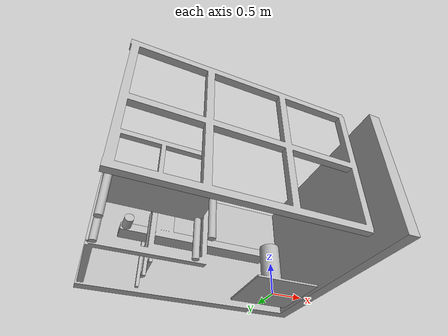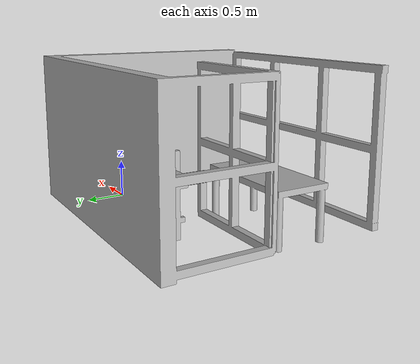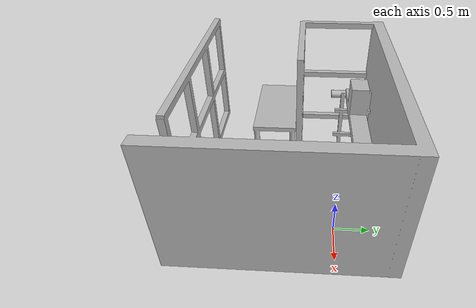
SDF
<?xml version="1.0" ?>
<sdf version="1.5">
  <model name="scene">
    <link name="link">
      <collision name="collision">
        <geometry>
         <mesh>
           <uri>model://scene/meshes/table.dae</uri>
          </mesh>
        </geometry>
      </collision>
      <visual name="visual">
        <geometry>
          <mesh>
            <uri>model://scene/meshes/table.dae</uri>
          </mesh>
        </geometry>
      </visual>

<collision name="collision2">
        <geometry>
         <mesh>
           <uri>model://scene/meshes/fence1.dae</uri>
          </mesh>
        </geometry>
      </collision>
      <visual name="visual2">
        <geometry>
          <mesh>
            <uri>model://scene/meshes/fence1.dae</uri>
          </mesh>
        </geometry>
      </visual>

<collision name="collision3">
        <geometry>
         <mesh>
           <uri>model://scene/meshes/conveyorBelt.dae</uri>
          </mesh>
        </geometry>
      </collision>
      <visual name="visual3">
        <geometry>
          <mesh>
            <uri>model://scene/meshes/conveyorBelt.dae</uri>
          </mesh>
        </geometry>
      </visual>

<collision name="collision4">
        <geometry>
         <mesh>
           <uri>model://scene/meshes/Finger.dae</uri>
          </mesh>
        </geometry>
      </collision>
      <visual name="visual4">
        <geometry>
          <mesh>
            <uri>model://scene/meshes/Finger.dae</uri>
          </mesh>
        </geometry>
      </visual>

<collision name="collision5">
        <geometry>
         <mesh>
           <uri>model://scene/meshes/foot.dae</uri>
          </mesh>
        </geometry>
      </collision>
      <visual name="visual5">
        <geometry>
          <mesh>
            <uri>model://scene/meshes/foot.dae</uri>
          </mesh>
        </geometry>
      </visual>

    </link>

  </model>
</sdf>
